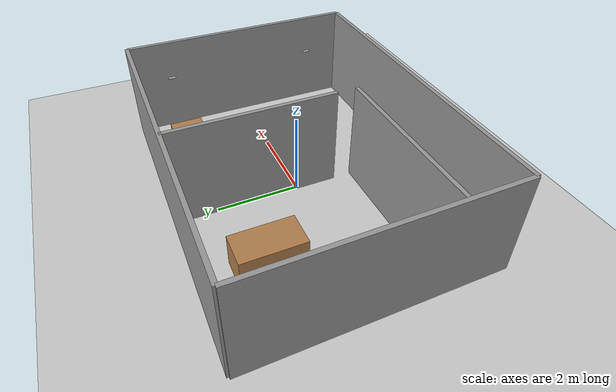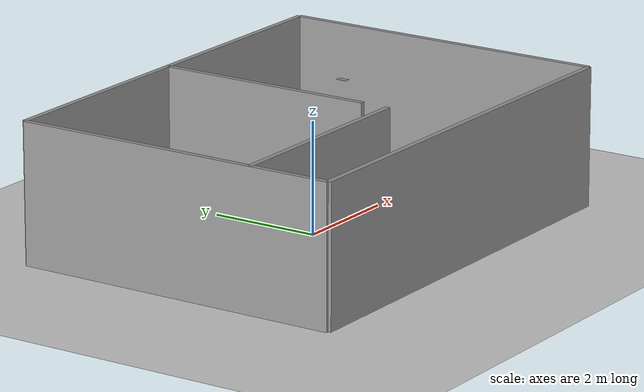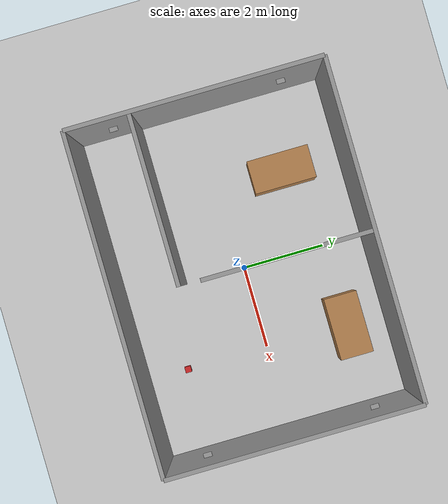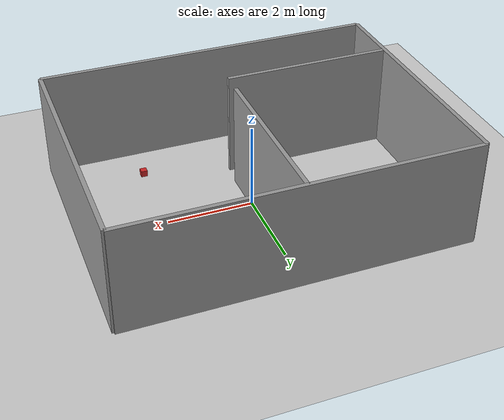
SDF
<?xml version="1.0" ?>
<sdf version="1.6">
  <world name="office_world">
    <!-- Physics -->
    <physics type="ode">
      <max_step_size>0.001</max_step_size>
      <real_time_factor>1</real_time_factor>
      <real_time_update_rate>1000</real_time_update_rate>
    </physics>

    <!-- Ground Plane -->
    <include>
      <uri>model://ground_plane</uri>
    </include>

    <!-- Sun -->
    <include>
      <uri>model://sun</uri>
    </include>

    <!-- Outer Walls (8m x 6m) -->
    <model name="outer_walls">
      <static>true</static>
      <link name="link">
        <!-- North Wall -->
        <collision name="north">
          <pose>4 0 1.25 0 0 0</pose>
          <geometry><box><size>0.1 6.0 2.5</size></box></geometry>
        </collision>
        <visual name="north_visual">
          <pose>4 0 1.25 0 0 0</pose>
          <geometry><box><size>0.1 6.0 2.5</size></box></geometry>
          <material><script><uri>file://media/materials/scripts/gazebo.material</uri><name>Gazebo/Grey</name></script></material>
        </visual>
        <!-- South Wall -->
        <collision name="south">
          <pose>-4 0 1.25 0 0 0</pose>
          <geometry><box><size>0.1 6.0 2.5</size></box></geometry>
        </collision>
        <visual name="south_visual">
          <pose>-4 0 1.25 0 0 0</pose>
          <geometry><box><size>0.1 6.0 2.5</size></box></geometry>
          <material><script><uri>file://media/materials/scripts/gazebo.material</uri><name>Gazebo/Grey</name></script></material>
        </visual>
        <!-- East Wall -->
        <collision name="east">
          <pose>0 3 1.25 0 0 0</pose>
          <geometry><box><size>8.0 0.1 2.5</size></box></geometry>
        </collision>
        <visual name="east_visual">
          <pose>0 3 1.25 0 0 0</pose>
          <geometry><box><size>8.0 0.1 2.5</size></box></geometry>
          <material><script><uri>file://media/materials/scripts/gazebo.material</uri><name>Gazebo/Grey</name></script></material>
        </visual>
        <!-- West Wall -->
        <collision name="west">
          <pose>0 -3 1.25 0 0 0</pose>
          <geometry><box><size>8.0 0.1 2.5</size></box></geometry>
        </collision>
        <visual name="west_visual">
          <pose>0 -3 1.25 0 0 0</pose>
          <geometry><box><size>8.0 0.1 2.5</size></box></geometry>
          <material><script><uri>file://media/materials/scripts/gazebo.material</uri><name>Gazebo/Grey</name></script></material>
        </visual>
      </link>
    </model>

    <!-- Internal Partitions -->
    <model name="internal_wall_1">
      <static>true</static>
      <pose>0 1 1.25 0 0 0</pose>
      <link name="link">
        <collision name="collision">
          <geometry><box><size>0.1 4.0 2.5</size></box></geometry>
        </collision>
        <visual name="visual">
          <geometry><box><size>0.1 4.0 2.5</size></box></geometry>
          <material><script><uri>file://media/materials/scripts/gazebo.material</uri><name>Gazebo/Grey</name></script></material>
        </visual>
      </link>
    </model>

    <model name="internal_wall_2">
      <static>true</static>
      <pose>-2 -1.5 1.25 0 0 1.5708</pose>
      <link name="link">
        <collision name="collision">
          <geometry><box><size>0.1 4.0 2.5</size></box></geometry>
        </collision>
        <visual name="visual">
          <geometry><box><size>0.1 4.0 2.5</size></box></geometry>
          <material><script><uri>file://media/materials/scripts/gazebo.material</uri><name>Gazebo/Grey</name></script></material>
        </visual>
      </link>
    </model>

    <!-- Furniture (Desks/Tables) -->
    <model name="desk_1">
      <static>true</static>
      <pose>2 2 0.4 0 0 0</pose>
      <link name="link">
        <collision name="collision">
          <geometry><box><size>1.5 0.8 0.8</size></box></geometry>
        </collision>
        <visual name="visual">
          <geometry><box><size>1.5 0.8 0.8</size></box></geometry>
          <material><script><uri>file://media/materials/scripts/gazebo.material</uri><name>Gazebo/Wood</name></script></material>
        </visual>
      </link>
    </model>

    <model name="desk_2">
      <static>true</static>
      <pose>-2 1.5 0.4 0 0 1.57</pose>
      <link name="link">
        <collision name="collision">
          <geometry><box><size>1.5 0.8 0.8</size></box></geometry>
        </collision>
        <visual name="visual">
          <geometry><box><size>1.5 0.8 0.8</size></box></geometry>
          <material><script><uri>file://media/materials/scripts/gazebo.material</uri><name>Gazebo/Wood</name></script></material>
        </visual>
      </link>
    </model>

    <!-- ArUco Marker Stands (IDs 0-3) -->
    <!-- We'll place them on the walls. Note: The actual marker texture depends on the marker_model -->
    <include>
      <name>marker_0</name>
      <uri>model://aruco_marker</uri>
      <pose>3.94 2 1.5 0 1.5708 0</pose>
    </include>

    <include>
      <name>marker_1</name>
      <uri>model://aruco_marker</uri>
      <pose>3.94 -2 1.5 0 1.5708 0</pose>
    </include>

    <include>
      <name>marker_2</name>
      <uri>model://aruco_marker</uri>
      <pose>-3.94 2 1.5 0 -1.5708 0</pose>
    </include>

    <include>
      <name>marker_3</name>
      <uri>model://aruco_marker</uri>
      <pose>-3.94 -2 1.5 0 -1.5708 0</pose>
    </include>

    <!-- Target Object -->
    <include>
      <uri>model://target_object</uri>
      <pose>2 -2 0.075 0 0 0</pose>
    </include>

  </world>
</sdf>

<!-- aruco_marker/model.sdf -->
<sdf version="1.6">
  <model name="aruco_marker">
    <static>true</static>
    <link name="link">
      <collision name="collision">
        <geometry>
          <box>
            <size>0.005 0.2 0.2</size>
          </box>
        </geometry>
      </collision>
      <visual name="visual">
        <geometry>
          <box>
            <size>0.005 0.2 0.2</size>
          </box>
        </geometry>
        <material>
          <script>
            <uri>file://media/materials/scripts/gazebo.material</uri>
            <name>Gazebo/Grey</name>
          </script>
        </material>
      </visual>
    </link>
  </model>
</sdf>

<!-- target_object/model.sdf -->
<sdf version="1.6">
  <model name="target_object">
    <link name="link">
      <inertial>
        <mass>0.5</mass>
        <inertia>
          <ixx>0.001875</ixx>
          <ixy>0</ixy>
          <ixz>0</ixz>
          <iyy>0.001875</iyy>
          <iyz>0</iyz>
          <izz>0.001875</izz>
        </inertia>
      </inertial>
      <collision name="collision">
        <geometry>
          <box>
            <size>0.15 0.15 0.15</size>
          </box>
        </geometry>
      </collision>
      <visual name="visual">
        <geometry>
          <box>
            <size>0.15 0.15 0.15</size>
          </box>
        </geometry>
        <material>
          <script>
            <uri>file://media/materials/scripts/gazebo.material</uri>
            <name>Gazebo/Red</name>
          </script>
        </material>
      </visual>
    </link>
  </model>
</sdf>
